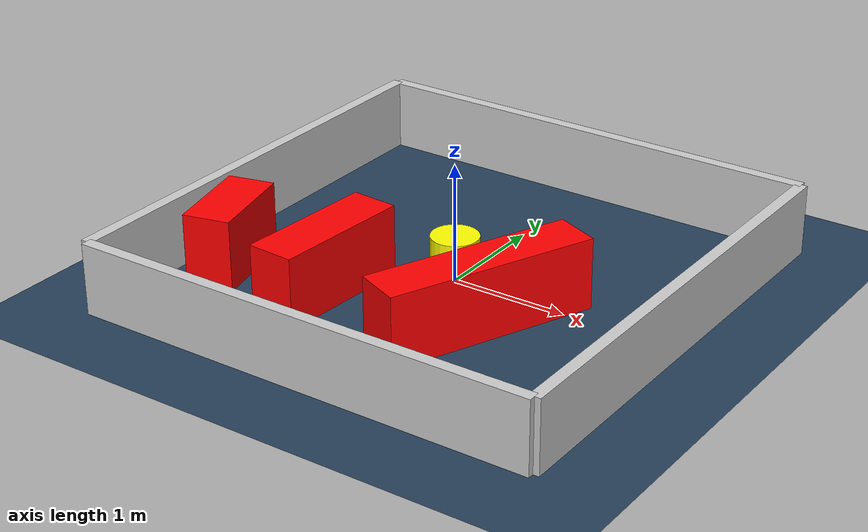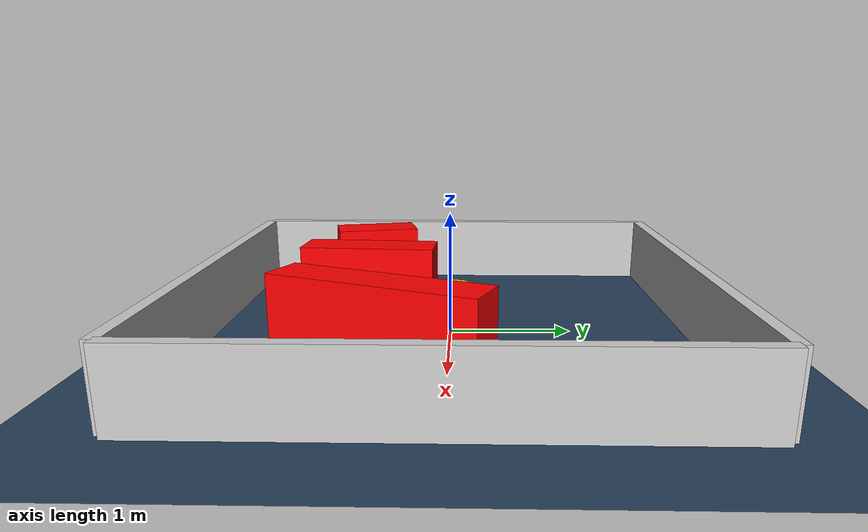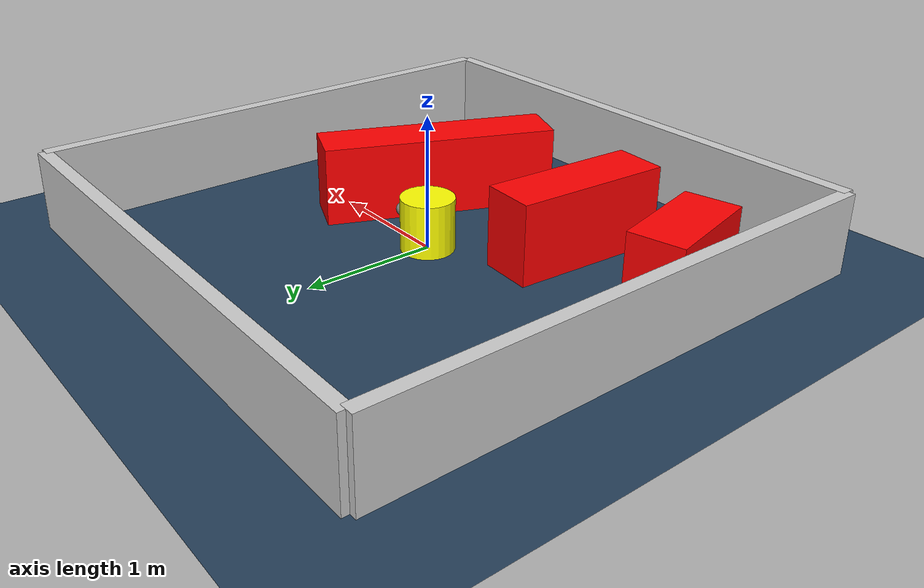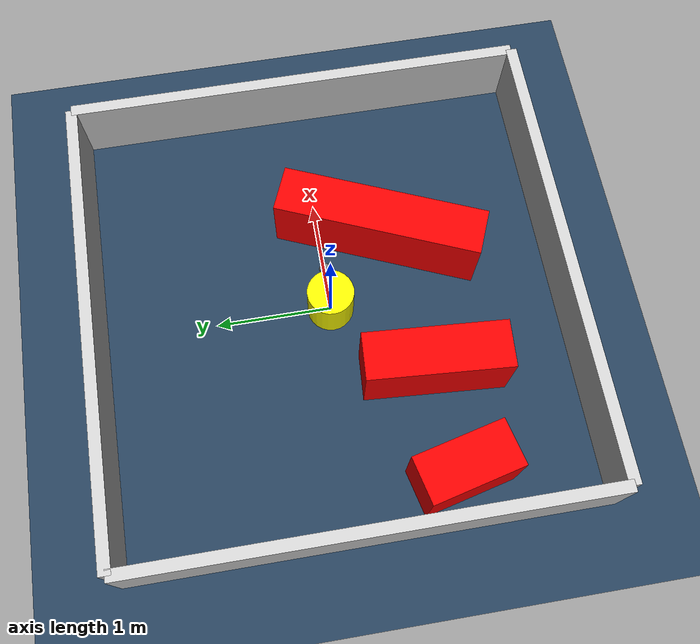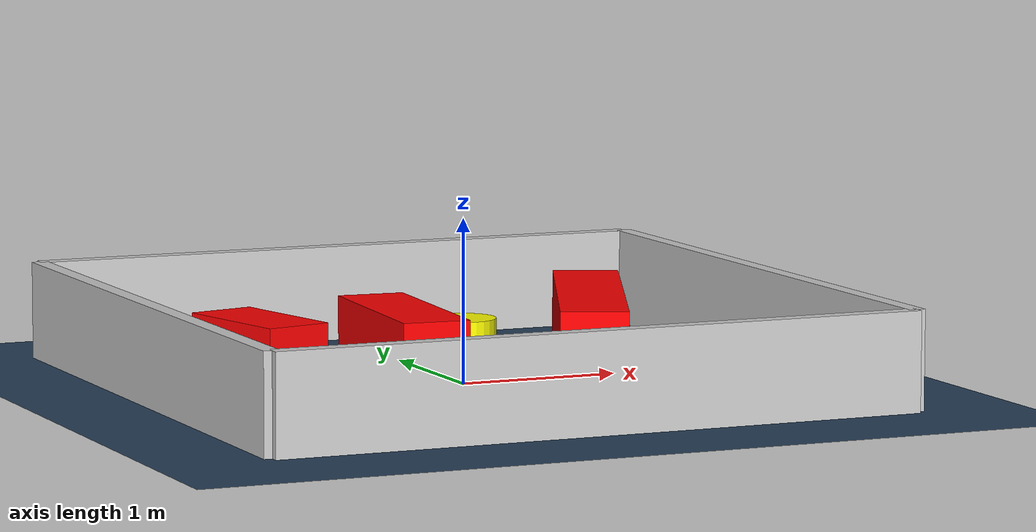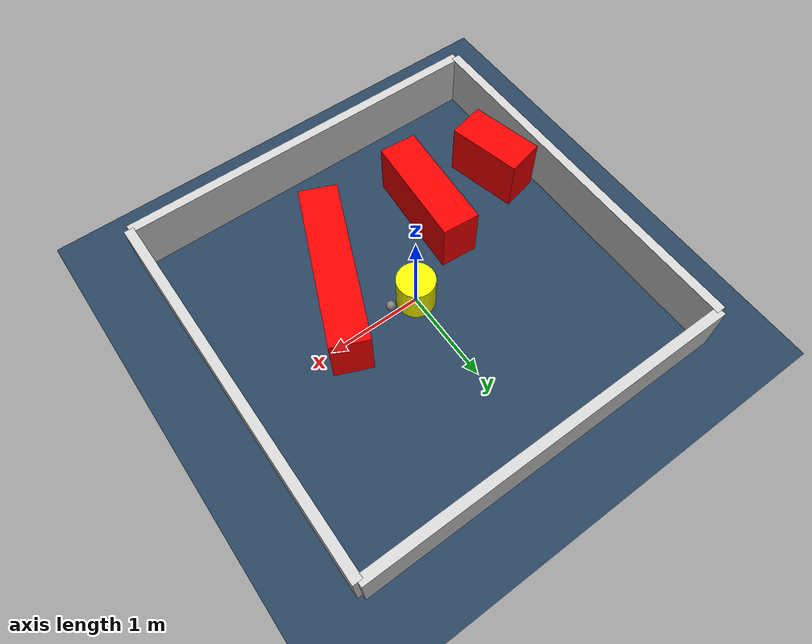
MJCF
<?xml version="1.0" ?>
<mujoco model="generated_environment">
  <option timestep="0.01" integrator="RK4" cone="elliptic"/>
  <default>
    <geom density="1"/>
  </default>
  <asset>
    <texture builtin="gradient" height="3072" rgb1="0.3 0.5 0.7" rgb2="0 0 0" type="skybox" width="512"/>
    <texture builtin="checker" height="300" mark="edge" markrgb="0.8 0.8 0.8" name="groundplane" rgb1="0.2 0.3 0.4" rgb2="0.1 0.2 0.3" type="2d" width="300"/>
    <material name="groundplane" reflectance="0.2" texrepeat="5 5" texture="groundplane" texuniform="true"/>
    <material name="robot" rgba="0.0 1.0 0.0 1"/>
  </asset>
  <worldbody>
    <light dir="0 0 -1" directional="true" pos="0 0 1.5"/>
    <geom condim="4" friction="1.0 0.005 0.001" material="groundplane" name="floor" size="0 0 0.05" type="plane"/>
    <body name="walls">
      <geom name="wall_1" condim="4" pos="-2.0 0.0 0.3" rgba="0.800000011920929 0.800000011920929 0.800000011920929 1.0" size="0.05 2.0 0.3" type="box"/>
      <geom name="wall_2" condim="4" pos="2.0 0.0 0.3" rgba="0.800000011920929 0.800000011920929 0.800000011920929 1.0" size="0.05 2.0 0.3" type="box"/>
      <geom name="wall_3" condim="4" pos="0.0 -2.0 0.3" rgba="0.800000011920929 0.800000011920929 0.800000011920929 1.0" size="2.0 0.05 0.3" type="box"/>
      <geom name="wall_4" condim="4" pos="0.0 2.0 0.3" rgba="0.800000011920929 0.800000011920929 0.800000011920929 1.0" size="2.0 0.05 0.3" type="box"/>
    </body>
    <body name="robot">
      <joint name="joint_x" type="slide" pos="0 0 0" axis="1 0 0"/>
      <joint name="joint_y" type="slide" pos="0 0 0" axis="0 1 0"/>
      <geom name="robot" type="sphere" pos="0.3 0.0 0.2" size="0.05" mass="5." friction="1.0 0.005 0.0001" condim="4" rgba="0.5 0.5 0.5 1.0"/>
      <site name="sensor_ball"/>
    </body>
    <body name="obstacle_movable_1">
      <geom name="obstacle_movable_1" condim="4" pos="0.0 0.0 0.2" euler="0 0 0.0" friction="1.0 0.005 0.001" rgba="1.0 1.0 0.0 1.0" size="0.2 0.2 0.0" type="cylinder" mass="0.1"/>
      <joint type="free"/>
    </body>
    <body name="obstacle_2_static">
      <geom name="obstacle_2_static" condim="4" pos="-1.6143934577385335 -0.804774009343894 0.3" euler="0 0 103.29065604016365" friction="1.0 0.005 0.001" rgba="1 0 0 1" size="0.3974559094484215 0.2 0.3" type="box"/>
    </body>
    <body name="obstacle_3_static">
      <geom name="obstacle_3_static" condim="4" pos="0.5909272068851226 -0.5322612885734257 0.3" euler="0 0 247.03382849357237" friction="1.0 0.005 0.001" rgba="1 0 0 1" size="0.8925662190001646 0.2 0.3" type="box"/>
    </body>
    <body name="obstacle_4_static">
      <geom name="obstacle_4_static" condim="4" pos="-0.7051062927160517 -0.7568320048997428 0.3" euler="0 0 266.03095012501524" friction="1.0 0.005 0.001" rgba="1 0 0 1" size="0.6042925169936173 0.2 0.3" type="box"/>
    </body>
  </worldbody>
  <actuator>
    <motor name="actuator_x" joint="joint_x" gear="1" ctrlrange="-1 1"/>
    <motor name="actuator_y" joint="joint_y" gear="1" ctrlrange="-1 1"/>
  </actuator>
</mujoco>
